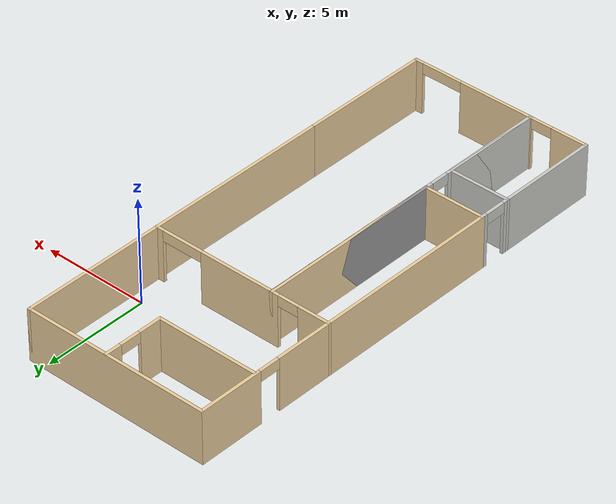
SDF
<?xml version='1.0'?>
<sdf version='1.6'>
  <model name='building'>
    <pose frame=''>-3.79491 -5.77885 0 0 -0 0</pose>
    <link name='Wall_50'>
      <collision name='Wall_50_Collision'>
        <geometry>
          <box>
            <size>9 0.15 2.5</size>
          </box>
        </geometry>
        <pose frame=''>0 0 1.25 0 -0 0</pose>
      </collision>
      <visual name='Wall_50_Visual'>
        <pose frame=''>0 0 1.25 0 -0 0</pose>
        <geometry>
          <box>
            <size>9 0.15 2.5</size>
          </box>
        </geometry>
        <material>
          <script>
            <uri>file://media/materials/scripts/gazebo.material</uri>
            <name>Gazebo/Grey</name>
          </script>
          <ambient>0.921569 0.807843 0.615686 1</ambient>
        </material>
        <meta>
          <layer>0</layer>
        </meta>
      </visual>
      <pose frame=''>0 11.025 0 0 -0 0</pose>
    </link>
    <link name='Wall_51'>
      <collision name='Wall_51_Collision'>
        <geometry>
          <box>
            <size>7 0.15 2.5</size>
          </box>
        </geometry>
        <pose frame=''>0 0 1.25 0 -0 0</pose>
      </collision>
      <visual name='Wall_51_Visual'>
        <pose frame=''>0 0 1.25 0 -0 0</pose>
        <geometry>
          <box>
            <size>7 0.15 2.5</size>
          </box>
        </geometry>
        <material>
          <script>
            <uri>file://media/materials/scripts/gazebo.material</uri>
            <name>Gazebo/Grey</name>
          </script>
          <ambient>0.921569 0.807843 0.615686 1</ambient>
        </material>
        <meta>
          <layer>0</layer>
        </meta>
      </visual>
      <pose frame=''>4.425 7.6 0 0 0 -1.5708</pose>
    </link>
    <link name='Wall_52'>
      <pose frame=''>0 4.175 0 0 -0 3.14159</pose>
      <visual name='Wall_52_Visual_0'>
        <pose frame=''>-4.28104 0 1.25 0 -0 0</pose>
        <geometry>
          <box>
            <size>0.437917 0.15 2.5</size>
          </box>
        </geometry>
        <material>
          <script>
            <uri>file://media/materials/scripts/gazebo.material</uri>
            <name>Gazebo/Grey</name>
          </script>
          <ambient>0.921569 0.807843 0.615686 1</ambient>
        </material>
        <meta>
          <layer>0</layer>
        </meta>
      </visual>
      <collision name='Wall_52_Collision_0'>
        <geometry>
          <box>
            <size>0.437917 0.15 2.5</size>
          </box>
        </geometry>
        <pose frame=''>-4.28104 0 1.25 0 -0 0</pose>
      </collision>
      <visual name='Wall_52_Visual_1'>
        <pose frame=''>-0.067944 0 1.25 0 -0 0</pose>
        <geometry>
          <box>
            <size>3.98828 0.15 2.5</size>
          </box>
        </geometry>
        <material>
          <script>
            <uri>file://media/materials/scripts/gazebo.material</uri>
            <name>Gazebo/Grey</name>
          </script>
          <ambient>0.921569 0.807843 0.615686 1</ambient>
        </material>
        <meta>
          <layer>0</layer>
        </meta>
      </visual>
      <collision name='Wall_52_Collision_1'>
        <geometry>
          <box>
            <size>3.98828 0.15 2.5</size>
          </box>
        </geometry>
        <pose frame=''>-0.067944 0 1.25 0 -0 0</pose>
      </collision>
      <visual name='Wall_52_Visual_2'>
        <pose frame=''>3.7131 0 1.25 0 -0 0</pose>
        <geometry>
          <box>
            <size>1.5738 0.15 2.5</size>
          </box>
        </geometry>
        <material>
          <script>
            <uri>file://media/materials/scripts/gazebo.material</uri>
            <name>Gazebo/Grey</name>
          </script>
          <ambient>0.921569 0.807843 0.615686 1</ambient>
        </material>
        <meta>
          <layer>0</layer>
        </meta>
      </visual>
      <collision name='Wall_52_Collision_2'>
        <geometry>
          <box>
            <size>1.5738 0.15 2.5</size>
          </box>
        </geometry>
        <pose frame=''>3.7131 0 1.25 0 -0 0</pose>
      </collision>
      <visual name='Wall_52_Visual_3'>
        <pose frame=''>-3.06208 0 2.25 0 -0 0</pose>
        <geometry>
          <box>
            <size>2 0.15 0.5</size>
          </box>
        </geometry>
        <material>
          <script>
            <uri>file://media/materials/scripts/gazebo.material</uri>
            <name>Gazebo/Grey</name>
          </script>
          <ambient>0.921569 0.807843 0.615686 1</ambient>
        </material>
        <meta>
          <layer>0</layer>
        </meta>
      </visual>
      <collision name='Wall_52_Collision_3'>
        <geometry>
          <box>
            <size>2 0.15 0.5</size>
          </box>
        </geometry>
        <pose frame=''>-3.06208 0 2.25 0 -0 0</pose>
      </collision>
      <visual name='Wall_52_Visual_4'>
        <pose frame=''>2.4262 0 2.25 0 -0 0</pose>
        <geometry>
          <box>
            <size>1 0.15 0.5</size>
          </box>
        </geometry>
        <material>
          <script>
            <uri>file://media/materials/scripts/gazebo.material</uri>
            <name>Gazebo/Grey</name>
          </script>
          <ambient>0.921569 0.807843 0.615686 1</ambient>
        </material>
        <meta>
          <layer>0</layer>
        </meta>
      </visual>
      <collision name='Wall_52_Collision_4'>
        <geometry>
          <box>
            <size>1 0.15 0.5</size>
          </box>
        </geometry>
        <pose frame=''>2.4262 0 2.25 0 -0 0</pose>
      </collision>
    </link>
    <link name='Wall_53'>
      <pose frame=''>-4.425 7.6 0 0 -0 1.5708</pose>
      <visual name='Wall_53_Visual_0'>
        <pose frame=''>-2.07395 0 1.25 0 -0 0</pose>
        <geometry>
          <box>
            <size>2.8521 0.15 2.5</size>
          </box>
        </geometry>
        <material>
          <script>
            <uri>file://media/materials/scripts/gazebo.material</uri>
            <name>Gazebo/Grey</name>
          </script>
          <ambient>0.921569 0.807843 0.615686 1</ambient>
        </material>
        <meta>
          <layer>0</layer>
        </meta>
      </visual>
      <collision name='Wall_53_Collision_0'>
        <geometry>
          <box>
            <size>2.8521 0.15 2.5</size>
          </box>
        </geometry>
        <pose frame=''>-2.07395 0 1.25 0 -0 0</pose>
      </collision>
      <visual name='Wall_53_Visual_1'>
        <pose frame=''>1.92605 0 1.25 0 -0 0</pose>
        <geometry>
          <box>
            <size>3.1479 0.15 2.5</size>
          </box>
        </geometry>
        <material>
          <script>
            <uri>file://media/materials/scripts/gazebo.material</uri>
            <name>Gazebo/Grey</name>
          </script>
          <ambient>0.921569 0.807843 0.615686 1</ambient>
        </material>
        <meta>
          <layer>0</layer>
        </meta>
      </visual>
      <collision name='Wall_53_Collision_1'>
        <geometry>
          <box>
            <size>3.1479 0.15 2.5</size>
          </box>
        </geometry>
        <pose frame=''>1.92605 0 1.25 0 -0 0</pose>
      </collision>
      <visual name='Wall_53_Visual_2'>
        <pose frame=''>-0.1479 0 2.25 0 -0 0</pose>
        <geometry>
          <box>
            <size>1 0.15 0.5</size>
          </box>
        </geometry>
        <material>
          <script>
            <uri>file://media/materials/scripts/gazebo.material</uri>
            <name>Gazebo/Grey</name>
          </script>
          <ambient>0.921569 0.807843 0.615686 1</ambient>
        </material>
        <meta>
          <layer>0</layer>
        </meta>
      </visual>
      <collision name='Wall_53_Collision_2'>
        <geometry>
          <box>
            <size>1 0.15 0.5</size>
          </box>
        </geometry>
        <pose frame=''>-0.1479 0 2.25 0 -0 0</pose>
      </collision>
    </link>
    <link name='Wall_55'>
      <collision name='Wall_55_Collision'>
        <geometry>
          <box>
            <size>9 0.15 2.5</size>
          </box>
        </geometry>
        <pose frame=''>0 0 1.25 0 -0 0</pose>
      </collision>
      <visual name='Wall_55_Visual'>
        <pose frame=''>0 0 1.25 0 -0 0</pose>
        <geometry>
          <box>
            <size>9 0.15 2.5</size>
          </box>
        </geometry>
        <material>
          <script>
            <uri>file://media/materials/scripts/gazebo.material</uri>
            <name>Gazebo/Grey</name>
          </script>
          <ambient>0.921569 0.807843 0.615686 1</ambient>
        </material>
        <meta>
          <layer>0</layer>
        </meta>
      </visual>
      <pose frame=''>-4.425 -0.25 0 0 0 -1.5708</pose>
    </link>
    <link name='Wall_56'>
      <collision name='Wall_56_Collision'>
        <geometry>
          <box>
            <size>3 0.15 2.5</size>
          </box>
        </geometry>
        <pose frame=''>0 0 1.25 0 -0 0</pose>
      </collision>
      <visual name='Wall_56_Visual'>
        <pose frame=''>0 0 1.25 0 -0 0</pose>
        <geometry>
          <box>
            <size>3 0.15 2.5</size>
          </box>
        </geometry>
        <material>
          <script>
            <uri>file://media/materials/scripts/gazebo.material</uri>
            <name>Gazebo/Grey</name>
          </script>
          <ambient>0.921569 0.807843 0.615686 1</ambient>
        </material>
        <meta>
          <layer>0</layer>
        </meta>
      </visual>
      <pose frame=''>-3 -4.675 0 0 -0 0</pose>
    </link>
    <link name='Wall_58'>
      <collision name='Wall_58_Collision'>
        <geometry>
          <box>
            <size>0.15 0.15 2.5</size>
          </box>
        </geometry>
        <pose frame=''>0 0 1.25 0 -0 0</pose>
      </collision>
      <visual name='Wall_58_Visual'>
        <pose frame=''>0 0 1.25 0 -0 0</pose>
        <geometry>
          <box>
            <size>0.15 0.15 2.5</size>
          </box>
        </geometry>
        <material>
          <script>
            <uri>file://media/materials/scripts/gazebo.material</uri>
            <name>Gazebo/Grey</name>
          </script>
          <ambient>1 1 1 1</ambient>
        </material>
        <meta>
          <layer>0</layer>
        </meta>
      </visual>
      <pose frame=''>-1.575 3.925 0 0 -0 0</pose>
    </link>
    <link name='Wall_66'>
      <collision name='Wall_66_Collision'>
        <geometry>
          <box>
            <size>9 0.15 2.5</size>
          </box>
        </geometry>
        <pose frame=''>0 0 1.25 0 -0 0</pose>
      </collision>
      <visual name='Wall_66_Visual'>
        <pose frame=''>0 0 1.25 0 -0 0</pose>
        <geometry>
          <box>
            <size>9 0.15 2.5</size>
          </box>
        </geometry>
        <material>
          <script>
            <uri>file://media/materials/scripts/gazebo.material</uri>
            <name>Gazebo/Grey</name>
          </script>
          <ambient>0.921569 0.807843 0.615686 1</ambient>
        </material>
        <meta>
          <layer>0</layer>
        </meta>
      </visual>
      <pose frame=''>-1.575 -0.25 0 0 -0 1.5708</pose>
    </link>
    <link name='Wall_68'>
      <collision name='Wall_68_Collision'>
        <geometry>
          <box>
            <size>9 0.15 2.5</size>
          </box>
        </geometry>
        <pose frame=''>0 0 1.25 0 -0 0</pose>
      </collision>
      <visual name='Wall_68_Visual'>
        <pose frame=''>0 0 1.25 0 -0 0</pose>
        <geometry>
          <box>
            <size>9 0.15 2.5</size>
          </box>
        </geometry>
        <material>
          <script>
            <uri>file://media/materials/scripts/gazebo.material</uri>
            <name>Gazebo/Grey</name>
          </script>
          <ambient>0.921569 0.807843 0.615686 1</ambient>
        </material>
        <meta>
          <layer>0</layer>
        </meta>
      </visual>
      <pose frame=''>4.425 -0.25 0 0 0 -1.5708</pose>
    </link>
    <link name='Wall_75'>
      <collision name='Wall_75_Collision'>
        <geometry>
          <box>
            <size>9 0.15 2.5</size>
          </box>
        </geometry>
        <pose frame=''>0 0 1.25 0 -0 0</pose>
      </collision>
      <visual name='Wall_75_Visual'>
        <pose frame=''>0 0 1.25 0 -0 0</pose>
        <geometry>
          <box>
            <size>9 0.15 2.5</size>
          </box>
        </geometry>
        <material>
          <script>
            <uri>file://media/materials/scripts/gazebo.material</uri>
            <name>Gazebo/Grey</name>
          </script>
          <ambient>1 1 1 1</ambient>
        </material>
        <meta>
          <layer>0</layer>
        </meta>
      </visual>
      <pose frame=''>-1.575 -0.25 0 0 0 -1.5708</pose>
    </link>
    <link name='Wall_78'>
      <pose frame=''>-4.425 -7.85 0 0 0 -1.5708</pose>
      <visual name='Wall_78_Visual_0'>
        <pose frame=''>-3.0867 0 1.25 0 -0 0</pose>
        <geometry>
          <box>
            <size>0.326599 0.15 2.5</size>
          </box>
        </geometry>
        <material>
          <script>
            <uri>file://media/materials/scripts/gazebo.material</uri>
            <name>Gazebo/CeilingTiled</name>
          </script>
          <ambient>0.921569 0.807843 0.615686 1</ambient>
        </material>
        <meta>
          <layer>0</layer>
        </meta>
      </visual>
      <collision name='Wall_78_Collision_0'>
        <geometry>
          <box>
            <size>0.326599 0.15 2.5</size>
          </box>
        </geometry>
        <pose frame=''>-3.0867 0 1.25 0 -0 0</pose>
      </collision>
      <visual name='Wall_78_Visual_1'>
        <pose frame=''>0.6633 0 1.25 0 -0 0</pose>
        <geometry>
          <box>
            <size>5.1734 0.15 2.5</size>
          </box>
        </geometry>
        <material>
          <script>
            <uri>file://media/materials/scripts/gazebo.material</uri>
            <name>Gazebo/CeilingTiled</name>
          </script>
          <ambient>0.921569 0.807843 0.615686 1</ambient>
        </material>
        <meta>
          <layer>0</layer>
        </meta>
      </visual>
      <collision name='Wall_78_Collision_1'>
        <geometry>
          <box>
            <size>5.1734 0.15 2.5</size>
          </box>
        </geometry>
        <pose frame=''>0.6633 0 1.25 0 -0 0</pose>
      </collision>
      <visual name='Wall_78_Visual_2'>
        <pose frame=''>-2.4234 0 2.25 0 -0 0</pose>
        <geometry>
          <box>
            <size>1 0.15 0.5</size>
          </box>
        </geometry>
        <material>
          <script>
            <uri>file://media/materials/scripts/gazebo.material</uri>
            <name>Gazebo/CeilingTiled</name>
          </script>
          <ambient>0.921569 0.807843 0.615686 1</ambient>
        </material>
        <meta>
          <layer>0</layer>
        </meta>
      </visual>
      <collision name='Wall_78_Collision_2'>
        <geometry>
          <box>
            <size>1 0.15 0.5</size>
          </box>
        </geometry>
        <pose frame=''>-2.4234 0 2.25 0 -0 0</pose>
      </collision>
    </link>
    <link name='Wall_80'>
      <pose frame=''>0 -11.025 0 0 -0 0</pose>
      <visual name='Wall_80_Visual_0'>
        <pose frame=''>-3.60666 0 1.25 0 -0 0</pose>
        <geometry>
          <box>
            <size>1.78667 0.15 2.5</size>
          </box>
        </geometry>
        <material>
          <script>
            <uri>file://media/materials/scripts/gazebo.material</uri>
            <name>Gazebo/Grey</name>
          </script>
          <ambient>0.921569 0.807843 0.615686 1</ambient>
        </material>
        <meta>
          <layer>0</layer>
        </meta>
      </visual>
      <collision name='Wall_80_Collision_0'>
        <geometry>
          <box>
            <size>1.78667 0.15 2.5</size>
          </box>
        </geometry>
        <pose frame=''>-3.60666 0 1.25 0 -0 0</pose>
      </collision>
      <visual name='Wall_80_Visual_1'>
        <pose frame=''>0.15254 0 1.25 0 -0 0</pose>
        <geometry>
          <box>
            <size>3.73174 0.15 2.5</size>
          </box>
        </geometry>
        <material>
          <script>
            <uri>file://media/materials/scripts/gazebo.material</uri>
            <name>Gazebo/Grey</name>
          </script>
          <ambient>0.921569 0.807843 0.615686 1</ambient>
        </material>
        <meta>
          <layer>0</layer>
        </meta>
      </visual>
      <collision name='Wall_80_Collision_1'>
        <geometry>
          <box>
            <size>3.73174 0.15 2.5</size>
          </box>
        </geometry>
        <pose frame=''>0.15254 0 1.25 0 -0 0</pose>
      </collision>
      <visual name='Wall_80_Visual_2'>
        <pose frame=''>4.2592 0 1.25 0 -0 0</pose>
        <geometry>
          <box>
            <size>0.481591 0.15 2.5</size>
          </box>
        </geometry>
        <material>
          <script>
            <uri>file://media/materials/scripts/gazebo.material</uri>
            <name>Gazebo/Grey</name>
          </script>
          <ambient>0.921569 0.807843 0.615686 1</ambient>
        </material>
        <meta>
          <layer>0</layer>
        </meta>
      </visual>
      <collision name='Wall_80_Collision_2'>
        <geometry>
          <box>
            <size>0.481591 0.15 2.5</size>
          </box>
        </geometry>
        <pose frame=''>4.2592 0 1.25 0 -0 0</pose>
      </collision>
      <visual name='Wall_80_Visual_3'>
        <pose frame=''>-2.21333 0 2.25 0 -0 0</pose>
        <geometry>
          <box>
            <size>1 0.15 0.5</size>
          </box>
        </geometry>
        <material>
          <script>
            <uri>file://media/materials/scripts/gazebo.material</uri>
            <name>Gazebo/Grey</name>
          </script>
          <ambient>0.921569 0.807843 0.615686 1</ambient>
        </material>
        <meta>
          <layer>0</layer>
        </meta>
      </visual>
      <collision name='Wall_80_Collision_3'>
        <geometry>
          <box>
            <size>1 0.15 0.5</size>
          </box>
        </geometry>
        <pose frame=''>-2.21333 0 2.25 0 -0 0</pose>
      </collision>
      <visual name='Wall_80_Visual_4'>
        <pose frame=''>3.01841 0 2.25 0 -0 0</pose>
        <geometry>
          <box>
            <size>2 0.15 0.5</size>
          </box>
        </geometry>
        <material>
          <script>
            <uri>file://media/materials/scripts/gazebo.material</uri>
            <name>Gazebo/Grey</name>
          </script>
          <ambient>0.921569 0.807843 0.615686 1</ambient>
        </material>
        <meta>
          <layer>0</layer>
        </meta>
      </visual>
      <collision name='Wall_80_Collision_4'>
        <geometry>
          <box>
            <size>2 0.15 0.5</size>
          </box>
        </geometry>
        <pose frame=''>3.01841 0 2.25 0 -0 0</pose>
      </collision>
    </link>
    <link name='Wall_82'>
      <collision name='Wall_82_Collision'>
        <geometry>
          <box>
            <size>6.5 0.15 2.5</size>
          </box>
        </geometry>
        <pose frame=''>0 0 1.25 0 -0 0</pose>
      </collision>
      <visual name='Wall_82_Visual'>
        <pose frame=''>0 0 1.25 0 -0 0</pose>
        <geometry>
          <box>
            <size>6.5 0.15 2.5</size>
          </box>
        </geometry>
        <material>
          <script>
            <uri>file://media/materials/scripts/gazebo.material</uri>
            <name>Gazebo/Grey</name>
          </script>
          <ambient>0.921569 0.807843 0.615686 1</ambient>
        </material>
        <meta>
          <layer>0</layer>
        </meta>
      </visual>
      <pose frame=''>4.425 -7.85 0 0 -0 1.5708</pose>
    </link>
    <link name='Wall_84'>
      <pose frame=''>-1.575 -7.85 0 0 0 -1.5708</pose>
      <visual name='Wall_84_Visual_0'>
        <pose frame=''>-3.04772 0 1.25 0 -0 0</pose>
        <geometry>
          <box>
            <size>0.404569 0.15 2.5</size>
          </box>
        </geometry>
        <material>
          <script>
            <uri>file://media/materials/scripts/gazebo.material</uri>
            <name>Gazebo/CeilingTiled</name>
          </script>
          <ambient>0.921569 0.807843 0.615686 1</ambient>
        </material>
        <meta>
          <layer>0</layer>
        </meta>
      </visual>
      <collision name='Wall_84_Collision_0'>
        <geometry>
          <box>
            <size>0.404569 0.15 2.5</size>
          </box>
        </geometry>
        <pose frame=''>-3.04772 0 1.25 0 -0 0</pose>
      </collision>
      <visual name='Wall_84_Visual_1'>
        <pose frame=''>0.652285 0 1.25 0 -0 0</pose>
        <geometry>
          <box>
            <size>5.19543 0.15 2.5</size>
          </box>
        </geometry>
        <material>
          <script>
            <uri>file://media/materials/scripts/gazebo.material</uri>
            <name>Gazebo/CeilingTiled</name>
          </script>
          <ambient>0.921569 0.807843 0.615686 1</ambient>
        </material>
        <meta>
          <layer>0</layer>
        </meta>
      </visual>
      <collision name='Wall_84_Collision_1'>
        <geometry>
          <box>
            <size>5.19543 0.15 2.5</size>
          </box>
        </geometry>
        <pose frame=''>0.652285 0 1.25 0 -0 0</pose>
      </collision>
      <visual name='Wall_84_Visual_2'>
        <pose frame=''>-2.39543 0 2.25 0 -0 0</pose>
        <geometry>
          <box>
            <size>0.9 0.15 0.5</size>
          </box>
        </geometry>
        <material>
          <script>
            <uri>file://media/materials/scripts/gazebo.material</uri>
            <name>Gazebo/CeilingTiled</name>
          </script>
          <ambient>0.921569 0.807843 0.615686 1</ambient>
        </material>
        <meta>
          <layer>0</layer>
        </meta>
      </visual>
      <collision name='Wall_84_Collision_2'>
        <geometry>
          <box>
            <size>0.9 0.15 0.5</size>
          </box>
        </geometry>
        <pose frame=''>-2.39543 0 2.25 0 -0 0</pose>
      </collision>
    </link>
    <link name='Wall_86'>
      <collision name='Wall_86_Collision'>
        <geometry>
          <box>
            <size>5 0.15 2.5</size>
          </box>
        </geometry>
        <pose frame=''>0 0 1.25 0 -0 0</pose>
      </collision>
      <visual name='Wall_86_Visual'>
        <pose frame=''>0 0 1.25 0 -0 0</pose>
        <geometry>
          <box>
            <size>5 0.15 2.5</size>
          </box>
        </geometry>
        <material>
          <script>
            <uri>file://media/materials/scripts/gazebo.material</uri>
            <name>Gazebo/CeilingTiled</name>
          </script>
          <ambient>0.921569 0.807843 0.615686 1</ambient>
        </material>
        <meta>
          <layer>0</layer>
        </meta>
      </visual>
      <pose frame=''>-1.575 -8.6 0 0 -0 1.5708</pose>
    </link>
    <link name='Wall_89'>
      <collision name='Wall_89_Collision'>
        <geometry>
          <box>
            <size>3 0.15 2.5</size>
          </box>
        </geometry>
        <pose frame=''>0 0 1.25 0 -0 0</pose>
      </collision>
      <visual name='Wall_89_Visual'>
        <pose frame=''>0 0 1.25 0 -0 0</pose>
        <geometry>
          <box>
            <size>3 0.15 2.5</size>
          </box>
        </geometry>
        <material>
          <script>
            <uri>file://media/materials/scripts/gazebo.material</uri>
            <name>Gazebo/CeilingTiled</name>
          </script>
          <ambient>0.921569 0.807843 0.615686 1</ambient>
        </material>
        <meta>
          <layer>0</layer>
        </meta>
      </visual>
      <pose frame=''>-3 -6.175 0 0 -0 3.14159</pose>
    </link>
    <link name='Wall_91'>
      <pose frame=''>0.429416 9.58905 0 0 0 -1.5708</pose>
      <visual name='Wall_91_Visual_0'>
        <pose frame=''>-1.09544 0 1.25 0 -0 0</pose>
        <geometry>
          <box>
            <size>0.809125 0.15 2.5</size>
          </box>
        </geometry>
        <material>
          <script>
            <uri>file://media/materials/scripts/gazebo.material</uri>
            <name>Gazebo/Grey</name>
          </script>
          <ambient>0.921569 0.807843 0.615686 1</ambient>
        </material>
        <meta>
          <layer>0</layer>
        </meta>
      </visual>
      <collision name='Wall_91_Collision_0'>
        <geometry>
          <box>
            <size>0.809125 0.15 2.5</size>
          </box>
        </geometry>
        <pose frame=''>-1.09544 0 1.25 0 -0 0</pose>
      </collision>
      <visual name='Wall_91_Visual_1'>
        <pose frame=''>0.904562 0 1.25 0 -0 0</pose>
        <geometry>
          <box>
            <size>1.19087 0.15 2.5</size>
          </box>
        </geometry>
        <material>
          <script>
            <uri>file://media/materials/scripts/gazebo.material</uri>
            <name>Gazebo/Grey</name>
          </script>
          <ambient>0.921569 0.807843 0.615686 1</ambient>
        </material>
        <meta>
          <layer>0</layer>
        </meta>
      </visual>
      <collision name='Wall_91_Collision_1'>
        <geometry>
          <box>
            <size>1.19087 0.15 2.5</size>
          </box>
        </geometry>
        <pose frame=''>0.904562 0 1.25 0 -0 0</pose>
      </collision>
      <visual name='Wall_91_Visual_2'>
        <pose frame=''>-0.190875 0 2.25 0 -0 0</pose>
        <geometry>
          <box>
            <size>1 0.15 0.5</size>
          </box>
        </geometry>
        <material>
          <script>
            <uri>file://media/materials/scripts/gazebo.material</uri>
            <name>Gazebo/Grey</name>
          </script>
          <ambient>0.921569 0.807843 0.615686 1</ambient>
        </material>
        <meta>
          <layer>0</layer>
        </meta>
      </visual>
      <collision name='Wall_91_Collision_2'>
        <geometry>
          <box>
            <size>1 0.15 0.5</size>
          </box>
        </geometry>
        <pose frame=''>-0.190875 0 2.25 0 -0 0</pose>
      </collision>
    </link>
    <link name='Wall_92'>
      <collision name='Wall_92_Collision'>
        <geometry>
          <box>
            <size>5 0.15 2.5</size>
          </box>
        </geometry>
        <pose frame=''>0 0 1.25 0 -0 0</pose>
      </collision>
      <visual name='Wall_92_Visual'>
        <pose frame=''>0 0 1.25 0 -0 0</pose>
        <geometry>
          <box>
            <size>5 0.15 2.5</size>
          </box>
        </geometry>
        <material>
          <script>
            <uri>file://media/materials/scripts/gazebo.material</uri>
            <name>Gazebo/Grey</name>
          </script>
          <ambient>0.921569 0.807843 0.615686 1</ambient>
        </material>
        <meta>
          <layer>0</layer>
        </meta>
      </visual>
      <pose frame=''>-1.99558 8.16405 0 0 -0 3.14159</pose>
    </link>
    <static>1</static>
  </model>
</sdf>
